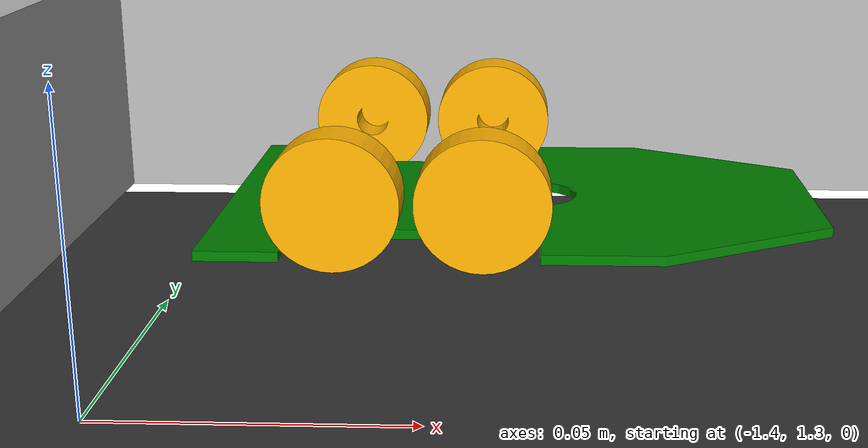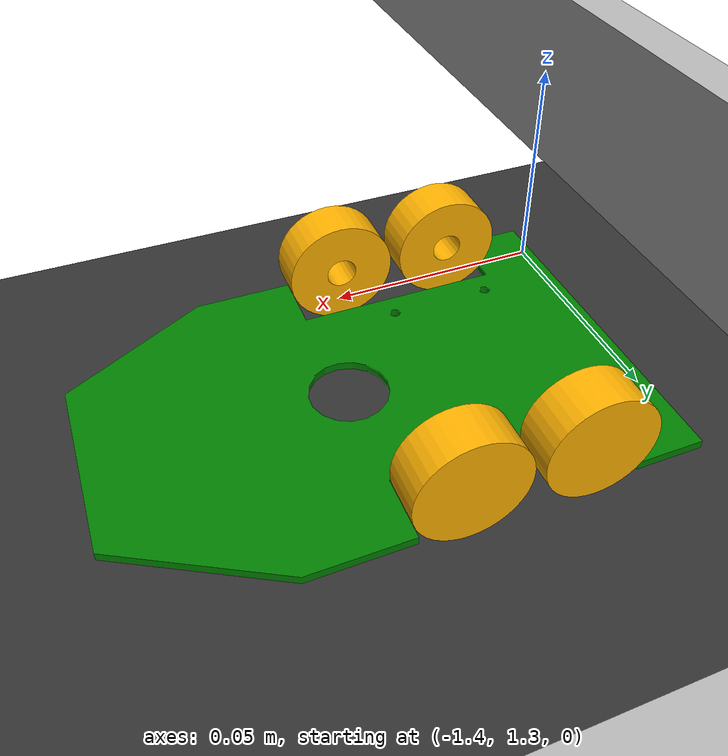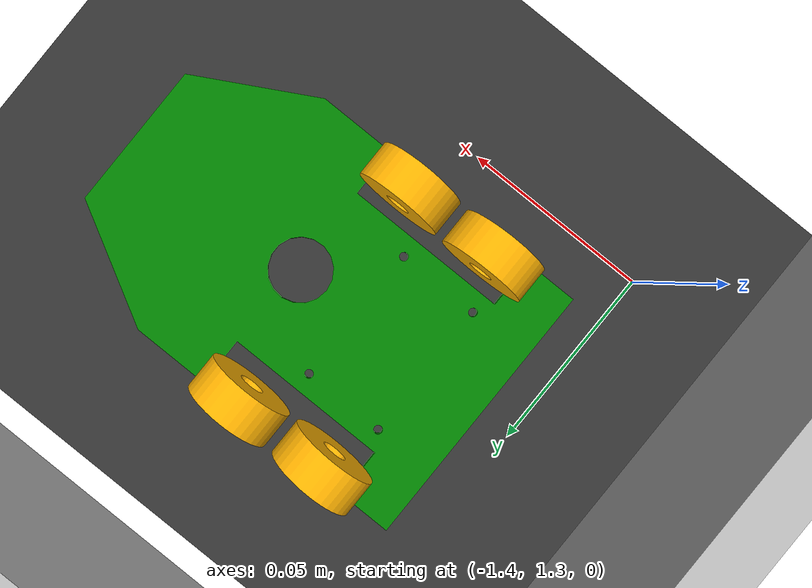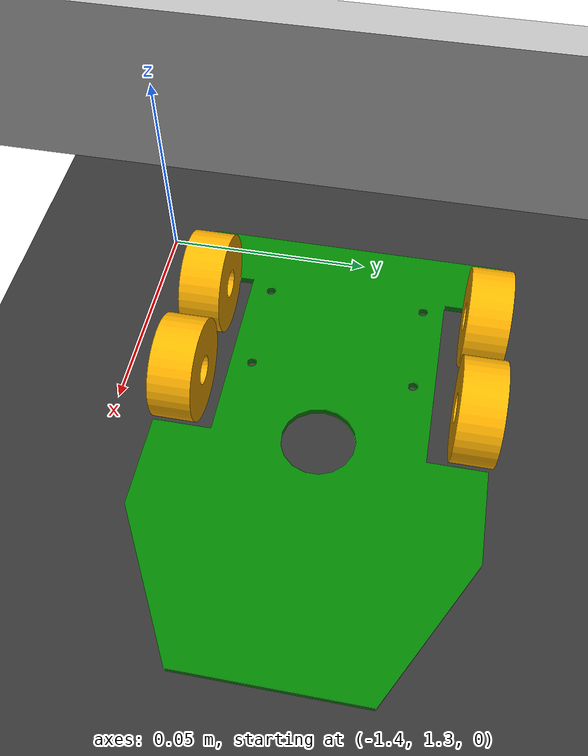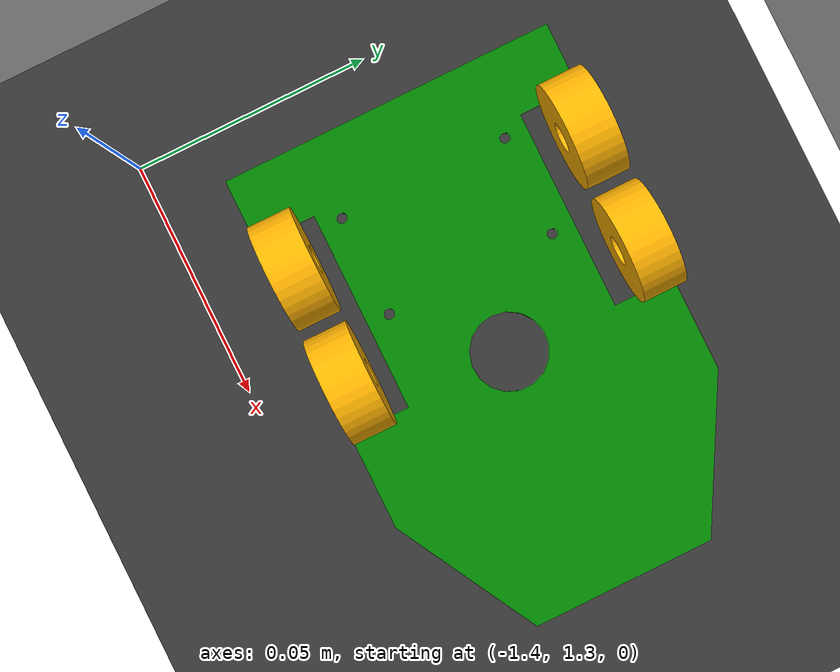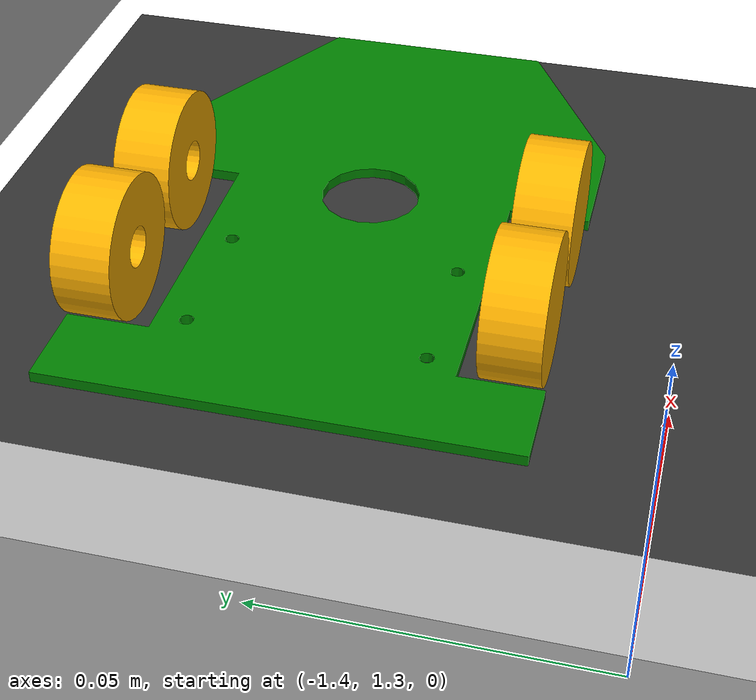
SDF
<?xml version="1.0" ?>
<sdf version="1.11">
    <world name="maze">
        <gravity>0 0 -58.8</gravity>
        <physics name="1ms" type="ignored">
            <max_step_size>0.001</max_step_size>
            <real_time_factor>1.0</real_time_factor>
        </physics>
        <plugin filename="gz-sim-physics-system" name="gz::sim::systems::Physics">
        </plugin>
        <plugin filename="gz-sim-user-commands-system"
                name="gz::sim::systems::UserCommands">
        </plugin>
        <plugin filename="gz-sim-scene-broadcaster-system"
                name="gz::sim::systems::SceneBroadcaster">
        </plugin>

        <light type="directional" name="sun">
            <cast_shadows>true</cast_shadows>
            <pose>0 0 10 0 0 0</pose>
            <diffuse>0.8 0.8 0.8 1</diffuse>
            <specular>0.2 0.2 0.2 1</specular>
            <attenuation>
                <range>1000</range>
                <constant>0.9</constant>
                <linear>0.01</linear>
                <quadratic>0.001</quadratic>
            </attenuation>
            <direction>-0.5 0.1 -0.9</direction>
        </light>

        <model name="ground">
            <static>true</static>
            <link name="ground_link">
                <visual name="ground_vis">
                    <geometry>
                        <plane>
                            <normal>0 0 1</normal>
                            <size>3 3</size>
                        </plane>
                    </geometry>
                    <material>
                        <ambient>0.2 0.2 0.2 1</ambient>
                        <diffuse>0.2 0.2 0.2 1</diffuse>
                        <specular>0.2 0.2 0.2 1</specular>
                    </material>
                </visual>
                <collision name="ground_coll">
                    <geometry>
                        <plane>
                            <normal>0 0 1</normal>
                            <size>3 3</size>
                        </plane>
                    </geometry>
                </collision>
            </link>
        </model>

        <model name="maze">
            <pose>-1.44 1.44 0 1.57079632679489 0 0</pose>
            <static>true</static>
            <link name="maze_link">
                <visual name="maze_vis">
                  <geometry>
                    <mesh>
                      <uri>model://meshes/maze.stl</uri>
                      <scale>0.001 0.001 0.001</scale>
                    </mesh>
                  </geometry>
                </visual>
                <collision name="maze_coll">
                    <geometry>
                        <mesh>
                            <uri>model://meshes/maze.stl</uri>
                            <scale>0.001 0.001 0.001</scale>
                        </mesh>
                    </geometry>
                </collision>
            </link>
        </model>

        <model name="robot">
            <self_collide>true</self_collide>
            <pose>-1.35 1.35 0.02 0 0 -1.57079632679489</pose>
            <include merge="true">
                <uri>model://models/robot.sdf</uri>
            </include>
        </model>
    </world>
</sdf>

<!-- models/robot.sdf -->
<sdf version="1.11">
	<model name="robot" canonical_link="base_link">
		<plugin filename="gz-sim-imu-system"
				name="gz::sim::systems::Imu">
		</plugin>
		<plugin filename="gz-sim-forcetorque-system"
				name="gz::sim::systems::ForceTorque">
		</plugin>
		<plugin filename="gz-sim-joint-state-publisher-system"
  				name="gz::sim::systems::JointStatePublisher">
			<topic>joint_state_left</topic>
			<joint_name>RLW_joint</joint_name>
		</plugin>
		<plugin filename="gz-sim-joint-state-publisher-system"
  				name="gz::sim::systems::JointStatePublisher">
			<topic>joint_state_right</topic>
			<joint_name>RRW_joint</joint_name>
		</plugin>
		<plugin filename="gz-sim-sensors-system"
				name="gz::sim::systems::Sensors">
			<render_engine>ogre2</render_engine>
		</plugin>
		<plugin filename="gz-sim-diff-drive-system"
				name="gz::sim::systems::DiffDrive">
			<left_joint>FLW_joint</left_joint>
			<left_joint>RLW_joint</left_joint>
			<right_joint>FRW_joint</right_joint>
			<right_joint>RRW_joint</right_joint>
			<wheel_separation>0.0585</wheel_separation>
			<wheel_radius>0.0105</wheel_radius>
			<topic>cmd_vel</topic>
			<odom_topic>odometry</odom_topic>
			<odom_publish_frequency>100</odom_publish_frequency>
			<min_linear_velocity>-10.0</min_linear_velocity>
			<max_linear_velocity>10.0</max_linear_velocity>
			<min_angular_velocity>-250.0</min_angular_velocity>
			<max_angular_velocity>250.0</max_angular_velocity>
			<min_linear_acceleration>-5.0</min_linear_acceleration>
			<max_linear_acceleration>5.0</max_linear_acceleration>
			<min_angular_acceleration>-100.0</min_angular_acceleration>
			<max_angular_acceleration>100.0</max_angular_acceleration>
		</plugin>
		<frame name="lidar0_frame" attached_to="base_link">
			<pose relative_to="base_link">-0.0285 0.03 0.005 0 0 1.57079632679489</pose>
		</frame>
		<frame name="lidar1_frame" attached_to="base_link">
			<pose relative_to="base_link">-0.017 0.062 0.005 0 0 2.35619449019234</pose>
		</frame>
		<frame name="lidar2_frame" attached_to="base_link">
			<pose relative_to="base_link">0.017 0.062 0.005 0 0 0.78539816339744</pose>
		</frame>
		<frame name="lidar3_frame" attached_to="base_link">
			<pose relative_to="base_link">0.0285 0.03 0.005 0 0 1.57079632679489</pose>
		</frame>
		<link name="base_link">
			<inertial>
				<mass>0.0825016710008052</mass>
				<inertia>
					<ixx>7.14350881728348E-05</ixx>
					<ixy>0</ixy>
					<ixz>0</ixz>
					<iyy>2.27281998078348E-05</iyy>
					<iyz>0</iyz>
					<izz>9.41280872677092E-05</izz>
				</inertia>
			</inertial>
			<visual name="base_vis">
				<pose relative_to="base_link">0 0.08 0.017 0 0 0</pose>
				<geometry>
					<mesh>
						<uri>model://meshes/base_link.stl</uri>
					</mesh>
				</geometry>
				<material>
					<ambient>0.0 0.5 0.0 1</ambient>
					<diffuse>0.0 0.5 0.0 1</diffuse>
					<specular>0.0 0.5 0.0 1</specular>
				</material>
			</visual>
			<collision name="base_coll">
				<pose relative_to="base_link">0 0.08 0.017 0 0 0</pose>
				<geometry>
					<mesh>
						<uri>model://meshes/base_link.stl</uri>
					</mesh>
				</geometry>
			</collision>
			<sensor name="imu_sensor" type="imu">
				<always_on>1</always_on>
				<update_rate>100</update_rate>
				<visualize>true</visualize>
				<topic>imu</topic>
			</sensor>
			<sensor name="gpu_lidar0" type="gpu_lidar">
				<pose relative_to="lidar0_frame">0 0 0 0 0 0</pose>
				<topic>lidar_0</topic>
				<update_rate>100</update_rate>
				<ray>
					<scan>
						<horizontal>
							<samples>1</samples>
							<resolution>1</resolution>
							<min_angle>0</min_angle>
							<max_angle>0</max_angle>
						</horizontal>
						<vertical>
							<samples>1</samples>
							<resolution>1</resolution>
							<min_angle>0</min_angle>
							<max_angle>0</max_angle>
						</vertical>
					</scan>
					<range>
						<min>0.0001</min>
						<max>0.3</max>
						<resolution>0.0001</resolution>
					</range>
				</ray>
				<always_on>1</always_on>
				<visualize>true</visualize>
			</sensor>
			<sensor name="gpu_lidar1" type="gpu_lidar">
				<pose relative_to="lidar1_frame">0 0 0 0 0 0</pose>
				<topic>lidar_1</topic>
				<update_rate>100</update_rate>
				<ray>
					<scan>
						<horizontal>
							<samples>1</samples>
							<resolution>1</resolution>
							<min_angle>0</min_angle>
							<max_angle>0</max_angle>
						</horizontal>
						<vertical>
							<samples>1</samples>
							<resolution>1</resolution>
							<min_angle>0</min_angle>
							<max_angle>0</max_angle>
						</vertical>
					</scan>
					<range>
						<min>0.0001</min>
						<max>0.3</max>
						<resolution>0.0001</resolution>
					</range>
				</ray>
				<always_on>1</always_on>
				<visualize>true</visualize>
			</sensor>
			<sensor name="gpu_lidar2" type="gpu_lidar">
				<pose relative_to="lidar2_frame">0 0 0 0 0 0</pose>
				<topic>lidar_2</topic>
				<update_rate>100</update_rate>
				<ray>
					<scan>
						<horizontal>
							<samples>1</samples>
							<resolution>1</resolution>
							<min_angle>0</min_angle>
							<max_angle>0</max_angle>
						</horizontal>
						<vertical>
							<samples>1</samples>
							<resolution>1</resolution>
							<min_angle>0</min_angle>
							<max_angle>0</max_angle>
						</vertical>
					</scan>
					<range>
						<min>0.0001</min>
						<max>0.3</max>
						<resolution>0.0001</resolution>
					</range>
				</ray>
				<always_on>1</always_on>
				<visualize>true</visualize>
			</sensor>
			<sensor name="gpu_lidar3" type="gpu_lidar">
				<pose relative_to="lidar3_frame">0 0 0 0 0 0</pose>
				<topic>lidar_3</topic>
				<update_rate>100</update_rate>
				<ray>
					<scan>
						<horizontal>
							<samples>1</samples>
							<resolution>1</resolution>
							<min_angle>0</min_angle>
							<max_angle>0</max_angle>
						</horizontal>
						<vertical>
							<samples>1</samples>
							<resolution>1</resolution>
							<min_angle>0</min_angle>
							<max_angle>0</max_angle>
						</vertical>
					</scan>
					<range>
						<min>0.0001</min>
						<max>0.3</max>
						<resolution>0.0001</resolution>
					</range>
				</ray>
				<always_on>1</always_on>
				<visualize>true</visualize>
			</sensor>
		</link>
		<link name="FLW_link">
			<pose relative_to="base_link">-0.02925 0.008 0.008 0 0 3.14159265359</pose>
			<inertial>
				<mass>0.00135156970824209</mass>
				<inertia>
					<ixx>8.00075362261772E-08</ixx>
					<ixy>0</ixy>
					<ixz>0</ixz>
					<iyy>4.82352157196683E-08</iyy>
					<iyz>0</iyz>
					<izz>4.82352157196683E-08</izz>
				</inertia>
			</inertial>
			<visual name="FLW_vis">
				<pose relative_to="FLW_link">-0.00425 0 0 0 0 3.14159265359</pose>
				<geometry>
					<mesh>
						<uri>model://meshes/wheel.stl</uri>
					</mesh>
				</geometry>
				<material>
					<ambient>1.0 0.7 0 1</ambient>
					<diffuse>1.0 0.7 0 1</diffuse>
					<specular>1.0 0.7 0 1</specular>
				</material>
			</visual>
			<collision name="FLW_coll">
				<pose relative_to="FLW_link">-0.00425 0 0 0 0 3.14159265359</pose>
				<geometry>
					<mesh>
						<uri>model://meshes/wheel.stl</uri>
					</mesh>
				</geometry>
				<surface>
					<friction>
						<ode>
							<mu>0.9</mu>
							<mu2>0.9</mu2>
						</ode>
						<bullet>
							<friction>0.9</friction>
							<friction2>0.9</friction2>
						</bullet>
					</friction>
				</surface>
			</collision>
		</link>
		<joint name="FLW_joint" type="revolute">
			<pose relative_to="FLW_link">0 0 0 0 0 0</pose>
			<parent>base_link</parent>
			<child>FLW_link</child>
			<axis>
				<xyz>1 0 0</xyz>
				<limit>
					<lower>-1.79769e+308</lower>
					<upper>1.79769e+308</upper>
					<effort>0.01</effort>
				</limit>
			</axis>
			<sensor name="FLW_torque" type="force_torque">
				<always_on>1</always_on>
				<update_rate>100</update_rate>
				<visualize>true</visualize>
				<topic>torque_flw</topic>
				<force_torque>
					<frame>child</frame>
					<measure_direction>parent_to_child</measure_direction>
				</force_torque>
			</sensor>
		</joint>
		<link name="RLW_link">
			<pose relative_to="base_link">-0.02925 -0.015 0.008 0 0 3.14159265359</pose>
			<inertial>
				<mass>0.00135156970824209</mass>
				<inertia>
					<ixx>8.00075362261772E-08</ixx>
					<ixy>0</ixy>
					<ixz>0</ixz>
					<iyy>4.82352157196683E-08</iyy>
					<iyz>0</iyz>
					<izz>4.82352157196683E-08</izz>
				</inertia>
			</inertial>
			<visual name="RLW_vis">
				<pose relative_to="RLW_link">-0.00425 0 0 0 0 3.14159265359</pose>
				<geometry>
					<mesh>
						<uri>model://meshes/wheel.stl</uri>
					</mesh>
				</geometry>
				<material>
					<ambient>1.0 0.7 0 1</ambient>
					<diffuse>1.0 0.7 0 1</diffuse>
					<specular>1.0 0.7 0 1</specular>
				</material>
			</visual>
			<collision name="RLW_coll">
				<pose relative_to="RLW_link">-0.00425 0 0 0 0 3.14159265359</pose>
				<geometry>
					<mesh>
						<uri>model://meshes/wheel.stl</uri>
					</mesh>
				</geometry>
				<surface>
					<friction>
						<ode>
							<mu>0.9</mu>
							<mu2>0.9</mu2>
						</ode>
						<bullet>
							<friction>0.9</friction>
							<friction2>0.9</friction2>
						</bullet>
					</friction>
				</surface>
			</collision>
		</link>
		<joint name="RLW_joint" type="revolute">
			<pose relative_to="RLW_link">0 0 0 0 0 0</pose>
			<parent>base_link</parent>
			<child>RLW_link</child>
			<axis>
				<xyz>1 0 0</xyz>
				<limit>
					<lower>-1.79769e+308</lower>
					<upper>1.79769e+308</upper>
					<effort>0.01</effort>
				</limit>
			</axis>
			<sensor name="RLW_torque" type="force_torque">
				<always_on>1</always_on>
				<update_rate>100</update_rate>
				<visualize>true</visualize>
				<topic>torque_rlw</topic>
				<force_torque>
					<frame>child</frame>
					<measure_direction>parent_to_child</measure_direction>
				</force_torque>
			</sensor>
		</joint>
		<link name="FRW_link">
			<pose relative_to="base_link">0.02925 0.008 0.008 0 0 3.14159265359</pose>
			<inertial>
				<mass>0.00135156970824209</mass>
				<inertia>
					<ixx>8.00075362261772E-08</ixx>
					<ixy>0</ixy>
					<ixz>0</ixz>
					<iyy>4.82352157196683E-08</iyy>
					<iyz>0</iyz>
					<izz>4.82352157196683E-08</izz>
				</inertia>
			</inertial>
			<visual name="FRW_vis">
				<pose relative_to="FRW_link">0.00425 0 0 0 0 0</pose>
				<geometry>
					<mesh>
						<uri>model://meshes/wheel.stl</uri>
					</mesh>
				</geometry>
				<material>
					<ambient>1.0 0.7 0 1</ambient>
					<diffuse>1.0 0.7 0 1</diffuse>
					<specular>1.0 0.7 0 1</specular>
				</material>
			</visual>
			<collision name="FRW_coll">
				<pose relative_to="FRW_link">0.00425 0 0 0 0 0</pose>
				<geometry>
					<mesh>
						<uri>model://meshes/wheel.stl</uri>
					</mesh>
				</geometry>
				<surface>
					<friction>
						<ode>
							<mu>0.9</mu>
							<mu2>0.9</mu2>
						</ode>
						<bullet>
							<friction>0.9</friction>
							<friction2>0.9</friction2>
						</bullet>
					</friction>
				</surface>
			</collision>
		</link>
		<joint name="FRW_joint" type="revolute">
			<pose relative_to="FRW_link">0 0 0 0 0 0</pose>
			<parent>base_link</parent>
			<child>FRW_link</child>
			<axis>
				<xyz>1 0 0</xyz>
				<limit>
					<lower>-1.79769e+308</lower>
					<upper>1.79769e+308</upper>
					<effort>0.01</effort>
				</limit>
			</axis>
			<sensor name="FRW_torque" type="force_torque">
				<always_on>1</always_on>
				<update_rate>100</update_rate>
				<visualize>true</visualize>
				<topic>torque_frw</topic>
				<force_torque>
					<frame>child</frame>
					<measure_direction>parent_to_child</measure_direction>
				</force_torque>
			</sensor>
		</joint>
		<link name="RRW_link">
			<pose relative_to="base_link">0.02925 -0.015 0.008 0 0 3.14159265359</pose>
			<inertial>
				<mass>0.00135156970824209</mass>
				<inertia>
					<ixx>8.00075362261772E-08</ixx>
					<ixy>0</ixy>
					<ixz>0</ixz>
					<iyy>4.82352157196683E-08</iyy>
					<iyz>0</iyz>
					<izz>4.82352157196683E-08</izz>
				</inertia>
			</inertial>
			<visual name="RRW_vis">
				<pose relative_to="RRW_link">0.00425 0 0 0 0 0</pose>
				<geometry>
					<mesh>
						<uri>model://meshes/wheel.stl</uri>
					</mesh>
				</geometry>
				<material>
					<ambient>1.0 0.7 0 1</ambient>
					<diffuse>1.0 0.7 0 1</diffuse>
					<specular>1.0 0.7 0 1</specular>
				</material>
			</visual>
			<collision name="RRW_coll">
				<pose relative_to="RRW_link">0.00425 0 0 0 0 0</pose>
				<geometry>
					<mesh>
						<uri>model://meshes/wheel.stl</uri>
					</mesh>
				</geometry>
				<surface>
					<friction>
						<ode>
							<mu>0.9</mu>
							<mu2>0.9</mu2>
						</ode>
						<bullet>
							<friction>0.9</friction>
							<friction2>0.9</friction2>
						</bullet>
					</friction>
				</surface>
			</collision>
		</link>
		<joint name="RRW_joint" type="revolute">
			<pose relative_to="RRW_link">0 0 0 0 0 0</pose>
			<parent>base_link</parent>
			<child>RRW_link</child>
			<axis>
				<xyz>1 0 0</xyz>
				<limit>
					<lower>-1.79769e+308</lower>
					<upper>1.79769e+308</upper>
					<effort>0.01</effort>
				</limit>
			</axis>
			<sensor name="RRW_torque" type="force_torque">
				<always_on>1</always_on>
				<update_rate>100</update_rate>
				<visualize>true</visualize>
				<topic>torque_rrw</topic>
				<force_torque>
					<frame>child</frame>
					<measure_direction>parent_to_child</measure_direction>
				</force_torque>
			</sensor>
		</joint>
	</model>
</sdf>
